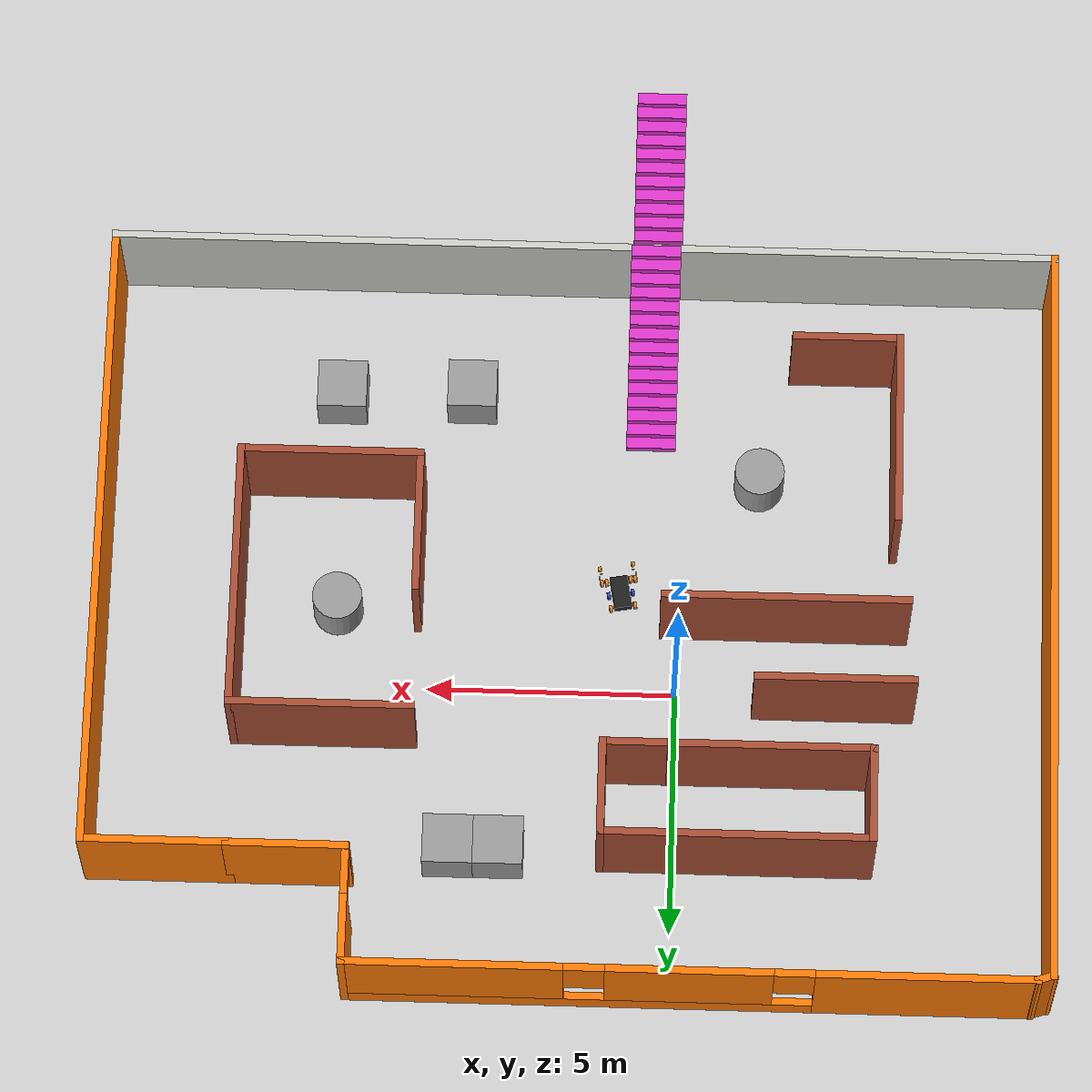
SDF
<sdf version="1.7">
 <world name="default">
  <light name="sun" type="directional">
   <pose>0 0 10 0 -0 0</pose>
   <diffuse>0.8 0.8 0.8 1</diffuse>
   <specular>0.2 0.2 0.2 1</specular>
   <attenuation>
    <range>1000</range>
    <constant>0.9</constant>
    <linear>0.01</linear>
    <quadratic>0.001</quadratic>
   </attenuation>
   <direction>-0.5 0.1 -0.9</direction>
   <spot><inner_angle>0</inner_angle><outer_angle>0</outer_angle><falloff>0</falloff></spot>
  </light>
  <model name="ground_plane">
   <static>1</static>
   <link name="link">
    <collision name="collision">
     <geometry><plane><normal>0 0 1</normal><size>100 100</size></plane></geometry>
     <surface><friction><ode><mu>100</mu><mu2>50</mu2></ode></friction></surface>
    </collision>
    <visual name="visual">
     <cast_shadows>0</cast_shadows>
     <geometry><plane><normal>0 0 1</normal><size>100 100</size></plane></geometry>
     <material>
      <script><uri>file://media/materials/scripts/gazebo.material</uri><name>Gazebo/Grey</name></script>
     </material>
    </visual>
   </link>
  </model>
  <gravity>0 0 -9.8</gravity>
  <magnetic_field>6e-06 2.3e-05 -4.2e-05</magnetic_field>
  <atmosphere type="adiabatic"/>
  <physics type="ode">
   <max_step_size>0.001</max_step_size>
   <real_time_factor>1</real_time_factor>
   <real_time_update_rate>1000</real_time_update_rate>
  </physics>
  <scene><ambient>0.4 0.4 0.4 1</ambient><background>0.7 0.7 0.7 1</background><shadows>1</shadows></scene>
  <spherical_coordinates>
   <surface_model>EARTH_WGS84</surface_model>
   <latitude_deg>0</latitude_deg>
   <longitude_deg>0</longitude_deg>
   <elevation>0</elevation>
   <heading_deg>0</heading_deg>
  </spherical_coordinates>
  <model name="hendbot">
   <link name="base_link">
    <inertial>
     <pose>-0.002987 -0 0.082641 0 -0 0</pose>
     <mass>54.8089</mass>
     <inertia>
      <ixx>1.31145</ixx>
      <ixy>-1.29347e-07</ixy>
      <ixz>-0.0106587</ixz>
      <iyy>2.666</iyy>
      <iyz>1.97052e-07</iyz>
      <izz>3.62598</izz>
     </inertia>
    </inertial>
    <collision name="base_link_fixed_joint_lump__hend_link_collision">
     <pose>-0.33246 0 0 0 -0 0</pose>
     <geometry><mesh><scale>1 1 1</scale><uri>model://hendbot/meshes/base_link.STL</uri></mesh></geometry>
    </collision>
    <collision name="base_link_fixed_joint_lump__LBW_Link_collision_1">
     <pose>-0.28246 0.215 0.035 1.5708 -1.1717 -3.14159</pose>
     <geometry><mesh><scale>1 1 1</scale><uri>model://hendbot/meshes/LBW_Link.STL</uri></mesh></geometry>
     <surface><friction><ode><mu>0.1</mu><mu2>0.1</mu2></ode></friction></surface>
    </collision>
    <collision name="base_link_fixed_joint_lump__LFW_Link_collision_2">
     <pose>0.28245 0.215 0.035103 1.5708 0.76776 3.14159</pose>
     <geometry><mesh><scale>1 1 1</scale><uri>model://hendbot/meshes/LFW_Link.STL</uri></mesh></geometry>
     <surface><friction><ode><mu>0.1</mu><mu2>0.1</mu2></ode></friction></surface>
    </collision>
    <collision name="base_link_fixed_joint_lump__RBW_Link_collision_3">
     <pose>-0.28246 -0.215 0.035 -1.5708 0.11175 -0</pose>
     <geometry><mesh><scale>1 1 1</scale><uri>model://hendbot/meshes/RBW_Link.STL</uri></mesh></geometry>
     <surface><friction><ode><mu>0.1</mu><mu2>0.1</mu2></ode></friction></surface>
    </collision>
    <collision name="base_link_fixed_joint_lump__RFW_Link_collision_4">
     <pose>0.28245 -0.215 0.035103 1.5708 0.34292 3.14159</pose>
     <geometry><mesh><scale>1 1 1</scale><uri>model://hendbot/meshes/RFW_Link.STL</uri></mesh></geometry>
     <surface><friction><ode><mu>0.1</mu><mu2>0.1</mu2></ode></friction></surface>
    </collision>
    <visual name="base_link_fixed_joint_lump__hend_link_visual">
     <pose>-0.33246 0 0 0 -0 0</pose>
     <geometry><mesh><scale>1 1 1</scale><uri>model://hendbot/meshes/base_link.STL</uri></mesh></geometry>
     <material>
      <script><name>Gazebo/Black</name><uri>file://media/materials/scripts/gazebo.material</uri></script>
     </material>
    </visual>
    <visual name="base_link_fixed_joint_lump__LBW_Link_visual_1">
     <pose>-0.28246 0.215 0.035 1.5708 -1.1717 -3.14159</pose>
     <geometry><mesh><scale>1 1 1</scale><uri>model://hendbot/meshes/LBW_Link.STL</uri></mesh></geometry>
     <material>
      <script><name>Gazebo/Orange</name><uri>file://media/materials/scripts/gazebo.material</uri></script>
     </material>
    </visual>
    <visual name="base_link_fixed_joint_lump__LFW_Link_visual_2">
     <pose>0.28245 0.215 0.035103 1.5708 0.76776 3.14159</pose>
     <geometry><mesh><scale>1 1 1</scale><uri>model://hendbot/meshes/LFW_Link.STL</uri></mesh></geometry>
     <material>
      <script><name>Gazebo/Orange</name><uri>file://media/materials/scripts/gazebo.material</uri></script>
     </material>
    </visual>
    <visual name="base_link_fixed_joint_lump__RBW_Link_visual_3">
     <pose>-0.28246 -0.215 0.035 -1.5708 0.11175 -0</pose>
     <geometry><mesh><scale>1 1 1</scale><uri>model://hendbot/meshes/RBW_Link.STL</uri></mesh></geometry>
     <material>
      <script><name>Gazebo/Orange</name><uri>file://media/materials/scripts/gazebo.material</uri></script>
     </material>
    </visual>
    <visual name="base_link_fixed_joint_lump__RFW_Link_visual_4">
     <pose>0.28245 -0.215 0.035103 1.5708 0.34292 3.14159</pose>
     <geometry><mesh><scale>1 1 1</scale><uri>model://hendbot/meshes/RFW_Link.STL</uri></mesh></geometry>
     <material>
      <script><name>Gazebo/Orange</name><uri>file://media/materials/scripts/gazebo.material</uri></script>
     </material>
    </visual>
   </link>
   <joint name="WLBelt_Joint" type="revolute">
    <pose relative_to="base_link">4e-05 0.215 0.035052 1.5708 0.35384 3.14159</pose>
    <parent>base_link</parent>
    <child>WLBelt_Link</child>
    <axis>
     <xyz>0 0 1</xyz>
     <limit><effort>100</effort><velocity>100</velocity><lower>-1e+16</lower><upper>1e+16</upper></limit>
     <dynamics>
      <damping>0.1</damping>
      <friction>0.1</friction>
      <spring_reference>0</spring_reference>
      <spring_stiffness>0</spring_stiffness>
     </dynamics>
    </axis>
   </joint>
   <link name="WLBelt_Link">
    <pose relative_to="WLBelt_Joint">0 0 0 0 -0 0</pose>
    <inertial>
     <pose>6e-06 2e-06 0.03 0 -0 0</pose>
     <mass>2.8302</mass>
     <inertia>
      <ixx>0.00487432</ixx>
      <ixy>1.0842e-19</ixy>
      <ixz>-5.95761e-21</ixz>
      <iyy>0.00487432</iyy>
      <iyz>-3.72125e-22</iyz>
      <izz>0.00805052</izz>
     </inertia>
    </inertial>
    <collision name="WLBelt_Link_collision">
     <geometry><mesh><scale>1 1 1</scale><uri>model://hendbot/meshes/WLBelt_Link.STL</uri></mesh></geometry>
    </collision>
    <visual name="WLBelt_Link_visual">
     <geometry><mesh><scale>1 1 1</scale><uri>model://hendbot/meshes/WLBelt_Link.STL</uri></mesh></geometry>
     <material>
      <script><name>Gazebo/Blue</name><uri>file://media/materials/scripts/gazebo.material</uri></script>
     </material>
    </visual>
   </link>
   <joint name="WRBelt_Joint" type="revolute">
    <pose relative_to="base_link">4e-05 -0.215 0.035052 -1.5708 0.65732 0</pose>
    <parent>base_link</parent>
    <child>WRBelt_Link</child>
    <axis>
     <xyz>0 0 1</xyz>
     <limit><effort>100</effort><velocity>100</velocity><lower>-1e+16</lower><upper>1e+16</upper></limit>
     <dynamics>
      <damping>0.1</damping>
      <friction>0.1</friction>
      <spring_reference>0</spring_reference>
      <spring_stiffness>0</spring_stiffness>
     </dynamics>
    </axis>
   </joint>
   <link name="WRBelt_Link">
    <pose relative_to="WRBelt_Joint">0 0 0 0 -0 0</pose>
    <inertial>
     <pose>-5e-06 4e-06 -0.03 0 -0 0</pose>
     <mass>2.8302</mass>
     <inertia>
      <ixx>0.00487432</ixx>
      <ixy>2.1684e-19</ixy>
      <ixz>9.79617e-36</ixz>
      <iyy>0.00487432</iyy>
      <iyz>7.94184e-36</iyz>
      <izz>0.00805052</izz>
     </inertia>
    </inertial>
    <collision name="WRBelt_Link_collision">
     <geometry><mesh><scale>1 1 1</scale><uri>model://hendbot/meshes/WRBelt_Link.STL</uri></mesh></geometry>
    </collision>
    <visual name="WRBelt_Link_visual">
     <geometry><mesh><scale>1 1 1</scale><uri>model://hendbot/meshes/WRBelt_Link.STL</uri></mesh></geometry>
     <material>
      <script><name>Gazebo/Blue</name><uri>file://media/materials/scripts/gazebo.material</uri></script>
     </material>
    </visual>
   </link>
   <joint name="LFFW_Joint" type="revolute">
    <pose relative_to="base_link">0.28245 0.30998 0.035103 1.5708 -1.005 -3.14159</pose>
    <parent>base_link</parent>
    <child>LFFW_Link</child>
    <axis>
     <xyz>0 0 1</xyz>
     <limit><effort>100</effort><velocity>100</velocity><lower>-1e+16</lower><upper>1e+16</upper></limit>
     <dynamics>
      <damping>0.1</damping>
      <friction>0.1</friction>
      <spring_reference>0</spring_reference>
      <spring_stiffness>0</spring_stiffness>
     </dynamics>
    </axis>
   </joint>
   <link name="LFFW_Link">
    <pose relative_to="LFFW_Joint">0 0 0 0 -0 0</pose>
    <inertial>
     <pose>-0.016199 0.044173 0.030887 0 -0 0</pose>
     <mass>3.50118</mass>
     <inertia>
      <ixx>0.0402368</ixx>
      <ixy>0.0126939</ixy>
      <ixz>-6.84372e-05</ixz>
      <iyy>0.0103212</iyy>
      <iyz>0.00018326</iyz>
      <izz>0.0481955</izz>
     </inertia>
    </inertial>
    <collision name="LFFW_Link_collision">
     <geometry><mesh><scale>1 1 1</scale><uri>model://hendbot/meshes/LFFW_Link.STL</uri></mesh></geometry>
     <surface><friction><ode><mu>0.1</mu><mu2>0.1</mu2></ode></friction></surface>
    </collision>
    <collision name="LFFW_Link_fixed_joint_lump__LF_Link_collision_1">
     <pose>0 0 0 0 -0 1.91705</pose>
     <geometry><mesh><scale>1 1 1</scale><uri>model://hendbot/meshes/LF_Link.STL</uri></mesh></geometry>
    </collision>
    <collision name="LFFW_Link_fixed_joint_lump__LW_Link_collision_2">
     <pose>-0.103425 0.281385 0 0 0 -2.57584</pose>
     <geometry><mesh><scale>1 1 1</scale><uri>model://hendbot/meshes/LW_Link.STL</uri></mesh></geometry>
     <surface><friction><ode><mu>0.1</mu><mu2>0.1</mu2></ode></friction></surface>
    </collision>
    <visual name="LFFW_Link_visual">
     <geometry><mesh><scale>1 1 1</scale><uri>model://hendbot/meshes/LFFW_Link.STL</uri></mesh></geometry>
     <material>
      <script><name>Gazebo/Orange</name><uri>file://media/materials/scripts/gazebo.material</uri></script>
     </material>
    </visual>
    <visual name="LFFW_Link_fixed_joint_lump__LF_Link_visual_1">
     <pose>0 0 0 0 -0 1.91705</pose>
     <geometry><mesh><scale>1 1 1</scale><uri>model://hendbot/meshes/LF_Link.STL</uri></mesh></geometry>
    </visual>
    <visual name="LFFW_Link_fixed_joint_lump__LW_Link_visual_2">
     <pose>-0.103425 0.281385 0 0 0 -2.57584</pose>
     <geometry><mesh><scale>1 1 1</scale><uri>model://hendbot/meshes/LW_Link.STL</uri></mesh></geometry>
     <material>
      <script><name>Gazebo/Orange</name><uri>file://media/materials/scripts/gazebo.material</uri></script>
     </material>
    </visual>
   </link>
   <joint name="RFFW_Joint" type="revolute">
    <pose relative_to="base_link">0.28245 -0.31 0.035103 -1.5708 -0.76747 0</pose>
    <parent>base_link</parent>
    <child>RFFW_Link</child>
    <axis>
     <xyz>0 0 1</xyz>
     <limit><effort>100</effort><velocity>100</velocity><lower>-1e+16</lower><upper>1e+16</upper></limit>
     <dynamics>
      <damping>0.1</damping>
      <friction>0.1</friction>
      <spring_reference>0</spring_reference>
      <spring_stiffness>0</spring_stiffness>
     </dynamics>
    </axis>
   </joint>
   <link name="RFFW_Link">
    <pose relative_to="RFFW_Joint">0 0 0 0 -0 0</pose>
    <inertial>
     <pose>0.041307 0.022524 -0.030886 0 -0 0</pose>
     <mass>3.50118</mass>
     <inertia>
      <ixx>0.0146412</ixx>
      <ixy>-0.0164836</ixy>
      <ixz>-0.000172565</ixz>
      <iyy>0.0359161</iyy>
      <iyz>-9.27813e-05</iyz>
      <izz>0.0481951</izz>
     </inertia>
    </inertial>
    <collision name="RFFW_Link_collision">
     <geometry><mesh><scale>1 1 1</scale><uri>model://hendbot/meshes/RFFW_Link.STL</uri></mesh></geometry>
     <surface><friction><ode><mu>0.1</mu><mu2>0.1</mu2></ode></friction></surface>
    </collision>
    <collision name="RFFW_Link_fixed_joint_lump__RF_Link_collision_1">
     <pose>0 0.01 0 0 -0 0.504452</pose>
     <geometry><mesh><scale>1 1 1</scale><uri>model://hendbot/meshes/RF_Link.STL</uri></mesh></geometry>
    </collision>
    <collision name="RFFW_Link_fixed_joint_lump__RW_Link_collision_2">
     <pose>0.263308 0.143325 0 0 0 -0.803348</pose>
     <geometry><mesh><scale>1 1 1</scale><uri>model://hendbot/meshes/RW_Link.STL</uri></mesh></geometry>
     <surface><friction><ode><mu>0.1</mu><mu2>0.1</mu2></ode></friction></surface>
    </collision>
    <visual name="RFFW_Link_visual">
     <geometry><mesh><scale>1 1 1</scale><uri>model://hendbot/meshes/RFFW_Link.STL</uri></mesh></geometry>
     <material>
      <script><name>Gazebo/Orange</name><uri>file://media/materials/scripts/gazebo.material</uri></script>
     </material>
    </visual>
    <visual name="RFFW_Link_fixed_joint_lump__RF_Link_visual_1">
     <pose>0 0.01 0 0 -0 0.504452</pose>
     <geometry><mesh><scale>1 1 1</scale><uri>model://hendbot/meshes/RF_Link.STL</uri></mesh></geometry>
    </visual>
    <visual name="RFFW_Link_fixed_joint_lump__RW_Link_visual_2">
     <pose>0.263308 0.143325 0 0 0 -0.803348</pose>
     <geometry><mesh><scale>1 1 1</scale><uri>model://hendbot/meshes/RW_Link.STL</uri></mesh></geometry>
     <material>
      <script><name>Gazebo/Orange</name><uri>file://media/materials/scripts/gazebo.material</uri></script>
     </material>
    </visual>
   </link>
   <static>0</static>
   <plugin name="diff_drive" filename="libgazebo_ros_diff_drive.so">
    <left_joint>WLBelt_Joint</left_joint>
    <right_joint>WRBelt_Joint</right_joint>
    <wheel_separation>0.43</wheel_separation>
    <wheel_diameter>0.17</wheel_diameter>
    <max_wheel_torque>200</max_wheel_torque>
    <max_wheel_acceleration>10.0</max_wheel_acceleration>
    <odometry_frame>odom</odometry_frame>
    <robot_base_frame>base_link</robot_base_frame>
    <publish_odom>1</publish_odom>
    <publish_odom_tf>1</publish_odom_tf>
    <publish_wheel_tf>1</publish_wheel_tf>
   </plugin>
   <pose>1.14303 -2.13211 0.039866 -0.000218 6.6e-05 -1.38716</pose>
  </model>
  <model name="home">
   <pose>2.04571 -2.81006 0 0 -0 0</pose>
   <link name="Stairs_1">
    <visual name="Stairs_1_Visual_0">
     <pose>-1.43345 -2.59805 0.083333 0 -0 0</pose>
     <geometry><box><size>1 0.233333 0.166667</size></box></geometry>
     <material>
      <script><uri>file://media/materials/scripts/gazebo.material</uri><name>Gazebo/Grey</name></script>
      <ambient>0.870588 0.207843 0.792157 1</ambient>
     </material>
     <meta><layer>0</layer></meta>
    </visual>
    <collision name="Stairs_1_Collision_0">
     <geometry><box><size>1 0.233333 0.166667</size></box></geometry>
     <pose>-1.43345 -2.59805 0.083333 0 -0 0</pose>
    </collision>
    <visual name="Stairs_1_Visual_1">
     <pose>-1.43345 -2.83138 0.25 0 -0 0</pose>
     <geometry><box><size>1 0.233333 0.166667</size></box></geometry>
     <material>
      <script><uri>file://media/materials/scripts/gazebo.material</uri><name>Gazebo/Grey</name></script>
      <ambient>0.870588 0.207843 0.792157 1</ambient>
     </material>
     <meta><layer>0</layer></meta>
    </visual>
    <collision name="Stairs_1_Collision_1">
     <geometry><box><size>1 0.233333 0.166667</size></box></geometry>
     <pose>-1.43345 -2.83138 0.25 0 -0 0</pose>
    </collision>
    <visual name="Stairs_1_Visual_2">
     <pose>-1.43345 -3.06471 0.416667 0 -0 0</pose>
     <geometry><box><size>1 0.233333 0.166667</size></box></geometry>
     <material>
      <script><uri>file://media/materials/scripts/gazebo.material</uri><name>Gazebo/Grey</name></script>
      <ambient>0.870588 0.207843 0.792157 1</ambient>
     </material>
     <meta><layer>0</layer></meta>
    </visual>
    <collision name="Stairs_1_Collision_2">
     <geometry><box><size>1 0.233333 0.166667</size></box></geometry>
     <pose>-1.43345 -3.06471 0.416667 0 -0 0</pose>
    </collision>
    <visual name="Stairs_1_Visual_3">
     <pose>-1.43345 -3.29805 0.583333 0 -0 0</pose>
     <geometry><box><size>1 0.233333 0.166667</size></box></geometry>
     <material>
      <script><uri>file://media/materials/scripts/gazebo.material</uri><name>Gazebo/Grey</name></script>
      <ambient>0.870588 0.207843 0.792157 1</ambient>
     </material>
     <meta><layer>0</layer></meta>
    </visual>
    <collision name="Stairs_1_Collision_3">
     <geometry><box><size>1 0.233333 0.166667</size></box></geometry>
     <pose>-1.43345 -3.29805 0.583333 0 -0 0</pose>
    </collision>
    <visual name="Stairs_1_Visual_4">
     <pose>-1.43345 -3.53138 0.75 0 -0 0</pose>
     <geometry><box><size>1 0.233333 0.166667</size></box></geometry>
     <material>
      <script><uri>file://media/materials/scripts/gazebo.material</uri><name>Gazebo/Grey</name></script>
      <ambient>0.870588 0.207843 0.792157 1</ambient>
     </material>
     <meta><layer>0</layer></meta>
    </visual>
    <collision name="Stairs_1_Collision_4">
     <geometry><box><size>1 0.233333 0.166667</size></box></geometry>
     <pose>-1.43345 -3.53138 0.75 0 -0 0</pose>
    </collision>
    <visual name="Stairs_1_Visual_5">
     <pose>-1.43345 -3.76471 0.916667 0 -0 0</pose>
     <geometry><box><size>1 0.233333 0.166667</size></box></geometry>
     <material>
      <script><uri>file://media/materials/scripts/gazebo.material</uri><name>Gazebo/Grey</name></script>
      <ambient>0.870588 0.207843 0.792157 1</ambient>
     </material>
     <meta><layer>0</layer></meta>
    </visual>
    <collision name="Stairs_1_Collision_5">
     <geometry><box><size>1 0.233333 0.166667</size></box></geometry>
     <pose>-1.43345 -3.76471 0.916667 0 -0 0</pose>
    </collision>
    <visual name="Stairs_1_Visual_6">
     <pose>-1.43345 -3.99805 1.08333 0 -0 0</pose>
     <geometry><box><size>1 0.233333 0.166667</size></box></geometry>
     <material>
      <script><uri>file://media/materials/scripts/gazebo.material</uri><name>Gazebo/Grey</name></script>
      <ambient>0.870588 0.207843 0.792157 1</ambient>
     </material>
     <meta><layer>0</layer></meta>
    </visual>
    <collision name="Stairs_1_Collision_6">
     <geometry><box><size>1 0.233333 0.166667</size></box></geometry>
     <pose>-1.43345 -3.99805 1.08333 0 -0 0</pose>
    </collision>
    <visual name="Stairs_1_Visual_7">
     <pose>-1.43345 -4.23138 1.25 0 -0 0</pose>
     <geometry><box><size>1 0.233333 0.166667</size></box></geometry>
     <material>
      <script><uri>file://media/materials/scripts/gazebo.material</uri><name>Gazebo/Grey</name></script>
      <ambient>0.870588 0.207843 0.792157 1</ambient>
     </material>
     <meta><layer>0</layer></meta>
    </visual>
    <collision name="Stairs_1_Collision_7">
     <geometry><box><size>1 0.233333 0.166667</size></box></geometry>
     <pose>-1.43345 -4.23138 1.25 0 -0 0</pose>
    </collision>
    <visual name="Stairs_1_Visual_8">
     <pose>-1.43345 -4.46471 1.41667 0 -0 0</pose>
     <geometry><box><size>1 0.233333 0.166667</size></box></geometry>
     <material>
      <script><uri>file://media/materials/scripts/gazebo.material</uri><name>Gazebo/Grey</name></script>
      <ambient>0.870588 0.207843 0.792157 1</ambient>
     </material>
     <meta><layer>0</layer></meta>
    </visual>
    <collision name="Stairs_1_Collision_8">
     <geometry><box><size>1 0.233333 0.166667</size></box></geometry>
     <pose>-1.43345 -4.46471 1.41667 0 -0 0</pose>
    </collision>
    <visual name="Stairs_1_Visual_9">
     <pose>-1.43345 -4.69805 1.58333 0 -0 0</pose>
     <geometry><box><size>1 0.233333 0.166667</size></box></geometry>
     <material>
      <script><uri>file://media/materials/scripts/gazebo.material</uri><name>Gazebo/Grey</name></script>
      <ambient>0.870588 0.207843 0.792157 1</ambient>
     </material>
     <meta><layer>0</layer></meta>
    </visual>
    <collision name="Stairs_1_Collision_9">
     <geometry><box><size>1 0.233333 0.166667</size></box></geometry>
     <pose>-1.43345 -4.69805 1.58333 0 -0 0</pose>
    </collision>
    <visual name="Stairs_1_Visual_10">
     <pose>-1.43345 -4.93138 1.75 0 -0 0</pose>
     <geometry><box><size>1 0.233333 0.166667</size></box></geometry>
     <material>
      <script><uri>file://media/materials/scripts/gazebo.material</uri><name>Gazebo/Grey</name></script>
      <ambient>0.870588 0.207843 0.792157 1</ambient>
     </material>
     <meta><layer>0</layer></meta>
    </visual>
    <collision name="Stairs_1_Collision_10">
     <geometry><box><size>1 0.233333 0.166667</size></box></geometry>
     <pose>-1.43345 -4.93138 1.75 0 -0 0</pose>
    </collision>
    <visual name="Stairs_1_Visual_11">
     <pose>-1.43345 -5.16471 1.91667 0 -0 0</pose>
     <geometry><box><size>1 0.233333 0.166667</size></box></geometry>
     <material>
      <script><uri>file://media/materials/scripts/gazebo.material</uri><name>Gazebo/Grey</name></script>
      <ambient>0.870588 0.207843 0.792157 1</ambient>
     </material>
     <meta><layer>0</layer></meta>
    </visual>
    <collision name="Stairs_1_Collision_11">
     <geometry><box><size>1 0.233333 0.166667</size></box></geometry>
     <pose>-1.43345 -5.16471 1.91667 0 -0 0</pose>
    </collision>
    <visual name="Stairs_1_Visual_12">
     <pose>-1.43345 -5.39805 2.08333 0 -0 0</pose>
     <geometry><box><size>1 0.233333 0.166667</size></box></geometry>
     <material>
      <script><uri>file://media/materials/scripts/gazebo.material</uri><name>Gazebo/Grey</name></script>
      <ambient>0.870588 0.207843 0.792157 1</ambient>
     </material>
     <meta><layer>0</layer></meta>
    </visual>
    <collision name="Stairs_1_Collision_12">
     <geometry><box><size>1 0.233333 0.166667</size></box></geometry>
     <pose>-1.43345 -5.39805 2.08333 0 -0 0</pose>
    </collision>
    <visual name="Stairs_1_Visual_13">
     <pose>-1.43345 -5.63138 2.25 0 -0 0</pose>
     <geometry><box><size>1 0.233333 0.166667</size></box></geometry>
     <material>
      <script><uri>file://media/materials/scripts/gazebo.material</uri><name>Gazebo/Grey</name></script>
      <ambient>0.870588 0.207843 0.792157 1</ambient>
     </material>
     <meta><layer>0</layer></meta>
    </visual>
    <collision name="Stairs_1_Collision_13">
     <geometry><box><size>1 0.233333 0.166667</size></box></geometry>
     <pose>-1.43345 -5.63138 2.25 0 -0 0</pose>
    </collision>
    <visual name="Stairs_1_Visual_14">
     <pose>-1.43345 -5.86471 2.41667 0 -0 0</pose>
     <geometry><box><size>1 0.233333 0.166667</size></box></geometry>
     <material>
      <script><uri>file://media/materials/scripts/gazebo.material</uri><name>Gazebo/Grey</name></script>
      <ambient>0.870588 0.207843 0.792157 1</ambient>
     </material>
     <meta><layer>0</layer></meta>
    </visual>
    <collision name="Stairs_1_Collision_14">
     <geometry><box><size>1 0.233333 0.166667</size></box></geometry>
     <pose>-1.43345 -5.86471 2.41667 0 -0 0</pose>
    </collision>
   </link>
   <link name="Stairs_2">
    <visual name="Stairs_2_Visual_0">
     <pose>-1.47391 -5.98017 0.083333 0 -0 0</pose>
     <geometry><box><size>1 0.233333 0.166667</size></box></geometry>
     <material>
      <script><uri>file://media/materials/scripts/gazebo.material</uri><name>Gazebo/Grey</name></script>
      <ambient>0.870588 0.207843 0.792157 1</ambient>
     </material>
     <meta><layer>0</layer></meta>
    </visual>
    <collision name="Stairs_2_Collision_0">
     <geometry><box><size>1 0.233333 0.166667</size></box></geometry>
     <pose>-1.47391 -5.98017 0.083333 0 -0 0</pose>
    </collision>
    <visual name="Stairs_2_Visual_1">
     <pose>-1.47391 -6.2135 0.25 0 -0 0</pose>
     <geometry><box><size>1 0.233333 0.166667</size></box></geometry>
     <material>
      <script><uri>file://media/materials/scripts/gazebo.material</uri><name>Gazebo/Grey</name></script>
      <ambient>0.870588 0.207843 0.792157 1</ambient>
     </material>
     <meta><layer>0</layer></meta>
    </visual>
    <collision name="Stairs_2_Collision_1">
     <geometry><box><size>1 0.233333 0.166667</size></box></geometry>
     <pose>-1.47391 -6.2135 0.25 0 -0 0</pose>
    </collision>
    <visual name="Stairs_2_Visual_2">
     <pose>-1.47391 -6.44684 0.416667 0 -0 0</pose>
     <geometry><box><size>1 0.233333 0.166667</size></box></geometry>
     <material>
      <script><uri>file://media/materials/scripts/gazebo.material</uri><name>Gazebo/Grey</name></script>
      <ambient>0.870588 0.207843 0.792157 1</ambient>
     </material>
     <meta><layer>0</layer></meta>
    </visual>
    <collision name="Stairs_2_Collision_2">
     <geometry><box><size>1 0.233333 0.166667</size></box></geometry>
     <pose>-1.47391 -6.44684 0.416667 0 -0 0</pose>
    </collision>
    <visual name="Stairs_2_Visual_3">
     <pose>-1.47391 -6.68017 0.583333 0 -0 0</pose>
     <geometry><box><size>1 0.233333 0.166667</size></box></geometry>
     <material>
      <script><uri>file://media/materials/scripts/gazebo.material</uri><name>Gazebo/Grey</name></script>
      <ambient>0.870588 0.207843 0.792157 1</ambient>
     </material>
     <meta><layer>0</layer></meta>
    </visual>
    <collision name="Stairs_2_Collision_3">
     <geometry><box><size>1 0.233333 0.166667</size></box></geometry>
     <pose>-1.47391 -6.68017 0.583333 0 -0 0</pose>
    </collision>
    <visual name="Stairs_2_Visual_4">
     <pose>-1.47391 -6.9135 0.75 0 -0 0</pose>
     <geometry><box><size>1 0.233333 0.166667</size></box></geometry>
     <material>
      <script><uri>file://media/materials/scripts/gazebo.material</uri><name>Gazebo/Grey</name></script>
      <ambient>0.870588 0.207843 0.792157 1</ambient>
     </material>
     <meta><layer>0</layer></meta>
    </visual>
    <collision name="Stairs_2_Collision_4">
     <geometry><box><size>1 0.233333 0.166667</size></box></geometry>
     <pose>-1.47391 -6.9135 0.75 0 -0 0</pose>
    </collision>
    <visual name="Stairs_2_Visual_5">
     <pose>-1.47391 -7.14684 0.916667 0 -0 0</pose>
     <geometry><box><size>1 0.233333 0.166667</size></box></geometry>
     <material>
      <script><uri>file://media/materials/scripts/gazebo.material</uri><name>Gazebo/Grey</name></script>
      <ambient>0.870588 0.207843 0.792157 1</ambient>
     </material>
     <meta><layer>0</layer></meta>
    </visual>
    <collision name="Stairs_2_Collision_5">
     <geometry><box><size>1 0.233333 0.166667</size></box></geometry>
     <pose>-1.47391 -7.14684 0.916667 0 -0 0</pose>
    </collision>
    <visual name="Stairs_2_Visual_6">
     <pose>-1.47391 -7.38017 1.08333 0 -0 0</pose>
     <geometry><box><size>1 0.233333 0.166667</size></box></geometry>
     <material>
      <script><uri>file://media/materials/scripts/gazebo.material</uri><name>Gazebo/Grey</name></script>
      <ambient>0.870588 0.207843 0.792157 1</ambient>
     </material>
     <meta><layer>0</layer></meta>
    </visual>
    <collision name="Stairs_2_Collision_6">
     <geometry><box><size>1 0.233333 0.166667</size></box></geometry>
     <pose>-1.47391 -7.38017 1.08333 0 -0 0</pose>
    </collision>
    <visual name="Stairs_2_Visual_7">
     <pose>-1.47391 -7.6135 1.25 0 -0 0</pose>
     <geometry><box><size>1 0.233333 0.166667</size></box></geometry>
     <material>
      <script><uri>file://media/materials/scripts/gazebo.material</uri><name>Gazebo/Grey</name></script>
      <ambient>0.870588 0.207843 0.792157 1</ambient>
     </material>
     <meta><layer>0</layer></meta>
    </visual>
    <collision name="Stairs_2_Collision_7">
     <geometry><box><size>1 0.233333 0.166667</size></box></geometry>
     <pose>-1.47391 -7.6135 1.25 0 -0 0</pose>
    </collision>
    <visual name="Stairs_2_Visual_8">
     <pose>-1.47391 -7.84684 1.41667 0 -0 0</pose>
     <geometry><box><size>1 0.233333 0.166667</size></box></geometry>
     <material>
      <script><uri>file://media/materials/scripts/gazebo.material</uri><name>Gazebo/Grey</name></script>
      <ambient>0.870588 0.207843 0.792157 1</ambient>
     </material>
     <meta><layer>0</layer></meta>
    </visual>
    <collision name="Stairs_2_Collision_8">
     <geometry><box><size>1 0.233333 0.166667</size></box></geometry>
     <pose>-1.47391 -7.84684 1.41667 0 -0 0</pose>
    </collision>
    <visual name="Stairs_2_Visual_9">
     <pose>-1.47391 -8.08017 1.58333 0 -0 0</pose>
     <geometry><box><size>1 0.233333 0.166667</size></box></geometry>
     <material>
      <script><uri>file://media/materials/scripts/gazebo.material</uri><name>Gazebo/Grey</name></script>
      <ambient>0.870588 0.207843 0.792157 1</ambient>
     </material>
     <meta><layer>0</layer></meta>
    </visual>
    <collision name="Stairs_2_Collision_9">
     <geometry><box><size>1 0.233333 0.166667</size></box></geometry>
     <pose>-1.47391 -8.08017 1.58333 0 -0 0</pose>
    </collision>
    <visual name="Stairs_2_Visual_10">
     <pose>-1.47391 -8.3135 1.75 0 -0 0</pose>
     <geometry><box><size>1 0.233333 0.166667</size></box></geometry>
     <material>
      <script><uri>file://media/materials/scripts/gazebo.material</uri><name>Gazebo/Grey</name></script>
      <ambient>0.870588 0.207843 0.792157 1</ambient>
     </material>
     <meta><layer>0</layer></meta>
    </visual>
    <collision name="Stairs_2_Collision_10">
     <geometry><box><size>1 0.233333 0.166667</size></box></geometry>
     <pose>-1.47391 -8.3135 1.75 0 -0 0</pose>
    </collision>
    <visual name="Stairs_2_Visual_11">
     <pose>-1.47391 -8.54684 1.91667 0 -0 0</pose>
     <geometry><box><size>1 0.233333 0.166667</size></box></geometry>
     <material>
      <script><uri>file://media/materials/scripts/gazebo.material</uri><name>Gazebo/Grey</name></script>
      <ambient>0.870588 0.207843 0.792157 1</ambient>
     </material>
     <meta><layer>0</layer></meta>
    </visual>
    <collision name="Stairs_2_Collision_11">
     <geometry><box><size>1 0.233333 0.166667</size></box></geometry>
     <pose>-1.47391 -8.54684 1.91667 0 -0 0</pose>
    </collision>
    <visual name="Stairs_2_Visual_12">
     <pose>-1.47391 -8.78017 2.08333 0 -0 0</pose>
     <geometry><box><size>1 0.233333 0.166667</size></box></geometry>
     <material>
      <script><uri>file://media/materials/scripts/gazebo.material</uri><name>Gazebo/Grey</name></script>
      <ambient>0.870588 0.207843 0.792157 1</ambient>
     </material>
     <meta><layer>0</layer></meta>
    </visual>
    <collision name="Stairs_2_Collision_12">
     <geometry><box><size>1 0.233333 0.166667</size></box></geometry>
     <pose>-1.47391 -8.78017 2.08333 0 -0 0</pose>
    </collision>
    <visual name="Stairs_2_Visual_13">
     <pose>-1.47391 -9.0135 2.25 0 -0 0</pose>
     <geometry><box><size>1 0.233333 0.166667</size></box></geometry>
     <material>
      <script><uri>file://media/materials/scripts/gazebo.material</uri><name>Gazebo/Grey</name></script>
      <ambient>0.870588 0.207843 0.792157 1</ambient>
     </material>
     <meta><layer>0</layer></meta>
    </visual>
    <collision name="Stairs_2_Collision_13">
     <geometry><box><size>1 0.233333 0.166667</size></box></geometry>
     <pose>-1.47391 -9.0135 2.25 0 -0 0</pose>
    </collision>
    <visual name="Stairs_2_Visual_14">
     <pose>-1.47391 -9.24684 2.41667 0 -0 0</pose>
     <geometry><box><size>1 0.233333 0.166667</size></box></geometry>
     <material>
      <script><uri>file://media/materials/scripts/gazebo.material</uri><name>Gazebo/Grey</name></script>
      <ambient>0.870588 0.207843 0.792157 1</ambient>
     </material>
     <meta><layer>0</layer></meta>
    </visual>
    <collision name="Stairs_2_Collision_14">
     <geometry><box><size>1 0.233333 0.166667</size></box></geometry>
     <pose>-1.47391 -9.24684 2.41667 0 -0 0</pose>
    </collision>
   </link>
   <link name="Wall_13">
    <collision name="Wall_13_Collision">
     <geometry><box><size>15.25 0.15 2.5</size></box></geometry>
     <pose>0 0 1.25 0 -0 0</pose>
    </collision>
    <visual name="Wall_13_Visual">
     <pose>0 0 1.25 0 -0 0</pose>
     <geometry><box><size>15.25 0.15 2.5</size></box></geometry>
     <material>
      <script><uri>file://media/materials/scripts/gazebo.material</uri><name>Gazebo/Grey</name></script>
      <ambient>0.996078 0.47451 0.0196078 1</ambient>
     </material>
     <meta><layer>0</layer></meta>
    </visual>
    <pose>-9.51699 1.61864 0 0 -0 1.5708</pose>
   </link>
   <link name="Wall_14">
    <collision name="Wall_14_Collision">
     <geometry><box><size>0.466228 0.15 2.5</size></box></geometry>
     <pose>0 0 1.25 0 -0 0</pose>
    </collision>
    <visual name="Wall_14_Visual">
     <pose>0 0 1.25 0 -0 0</pose>
     <geometry><box><size>0.466228 0.15 2.5</size></box></geometry>
     <material>
      <script><uri>file://media/materials/scripts/gazebo.material</uri><name>Gazebo/Grey</name></script>
      <ambient>0.996078 0.47451 0.0196078 1</ambient>
     </material>
     <meta><layer>0</layer></meta>
    </visual>
    <pose>-9.36699 9.21864 0 0 -0 0.321751</pose>
   </link>
   <link name="Wall_18">
    <collision name="Wall_18_Collision">
     <geometry><box><size>3 0.15 2.5</size></box></geometry>
     <pose>0 0 1.25 0 -0 0</pose>
    </collision>
    <visual name="Wall_18_Visual">
     <pose>0 0 1.25 0 -0 0</pose>
     <geometry><box><size>3 0.15 2.5</size></box></geometry>
     <material>
      <script><uri>file://media/materials/scripts/gazebo.material</uri><name>Gazebo/Bricks</name></script>
      <ambient>1 1 1 1</ambient>
     </material>
     <meta><layer>0</layer></meta>
    </visual>
    <pose>3.17512 0.070333 0 0 -0 -1.5708</pose>
   </link>
   <link name="Wall_19">
    <collision name="Wall_19_Collision">
     <geometry><box><size>3.75 0.15 2.5</size></box></geometry>
     <pose>0 0 1.25 0 -0 0</pose>
    </collision>
    <visual name="Wall_19_Visual">
     <pose>0 0 1.25 0 -0 0</pose>
     <geometry><box><size>3.75 0.15 2.5</size></box></geometry>
     <material>
      <script><uri>file://media/materials/scripts/gazebo.material</uri><name>Gazebo/Bricks</name></script>
      <ambient>1 1 1 1</ambient>
     </material>
     <meta><layer>0</layer></meta>
    </visual>
    <pose>4.97512 -1.35467 0 0 -0 0</pose>
   </link>
   <link name="Wall_2">
    <pose>-2.44012 9.26863 0 0 -0 0</pose>
    <visual name="Wall_2_Visual_0">
     <pose>-4.65263 0 1.25 0 -0 0</pose>
     <geometry><box><size>4.3988 0.15 2.5</size></box></geometry>
     <material>
      <script><uri>file://media/materials/scripts/gazebo.material</uri><name>Gazebo/Grey</name></script>
      <ambient>0.996078 0.47451 0.0196078 1</ambient>
     </material>
     <meta><layer>0</layer></meta>
    </visual>
    <collision name="Wall_2_Collision_0">
     <geometry><box><size>4.3988 0.15 2.5</size></box></geometry>
     <pose>-4.65263 0 1.25 0 -0 0</pose>
    </collision>
    <visual name="Wall_2_Visual_1">
     <pose>2.1994 0 0.25 0 -0 0</pose>
     <geometry><box><size>9.30525 0.15 0.5</size></box></geometry>
     <material>
      <script><uri>file://media/materials/scripts/gazebo.material</uri><name>Gazebo/Grey</name></script>
      <ambient>0.996078 0.47451 0.0196078 1</ambient>
     </material>
     <meta><layer>0</layer></meta>
    </visual>
    <collision name="Wall_2_Collision_1">
     <geometry><box><size>9.30525 0.15 0.5</size></box></geometry>
     <pose>2.1994 0 0.25 0 -0 0</pose>
    </collision>
    <visual name="Wall_2_Visual_2">
     <pose>-0.003309 0 1.5 0 -0 0</pose>
     <geometry><box><size>3.29983 0.15 2</size></box></geometry>
     <material>
      <script><uri>file://media/materials/scripts/gazebo.material</uri><name>Gazebo/Grey</name></script>
      <ambient>0.996078 0.47451 0.0196078 1</ambient>
     </material>
     <meta><layer>0</layer></meta>
    </visual>
    <collision name="Wall_2_Collision_2">
     <geometry><box><size>3.29983 0.15 2</size></box></geometry>
     <pose>-0.003309 0 1.5 0 -0 0</pose>
    </collision>
    <visual name="Wall_2_Visual_3">
     <pose>4.64932 0 1.5 0 -0 0</pose>
     <geometry><box><size>4.40542 0.15 2</size></box></geometry>
     <material>
      <script><uri>file://media/materials/scripts/gazebo.material</uri><name>Gazebo/Grey</name></script>
      <ambient>0.996078 0.47451 0.0196078 1</ambient>
     </material>
     <meta><layer>0</layer></meta>
    </visual>
    <collision name="Wall_2_Collision_3">
     <geometry><box><size>4.40542 0.15 2</size></box></geometry>
     <pose>4.64932 0 1.5 0 -0 0</pose>
    </collision>
    <visual name="Wall_2_Visual_4">
     <pose>-2.05322 0 1.9 0 -0 0</pose>
     <geometry><box><size>0.8 0.15 1.2</size></box></geometry>
     <material>
      <script><uri>file://media/materials/scripts/gazebo.material</uri><name>Gazebo/Grey</name></script>
      <ambient>0.996078 0.47451 0.0196078 1</ambient>
     </material>
     <meta><layer>0</layer></meta>
    </visual>
    <collision name="Wall_2_Collision_4">
     <geometry><box><size>0.8 0.15 1.2</size></box></geometry>
     <pose>-2.05322 0 1.9 0 -0 0</pose>
    </collision>
    <visual name="Wall_2_Visual_5">
     <pose>2.04661 0 1.9 0 -0 0</pose>
     <geometry><box><size>0.8 0.15 1.2</size></box></geometry>
     <material>
      <script><uri>file://media/materials/scripts/gazebo.material</uri><name>Gazebo/Grey</name></script>
      <ambient>0.996078 0.47451 0.0196078 1</ambient>
     </material>
     <meta><layer>0</layer></meta>
    </visual>
    <collision name="Wall_2_Collision_5">
     <geometry><box><size>0.8 0.15 1.2</size></box></geometry>
     <pose>2.04661 0 1.9 0 -0 0</pose>
    </collision>
   </link>
   <link name="Wall_20">
    <collision name="Wall_20_Collision">
     <geometry><box><size>5.5 0.15 2.5</size></box></geometry>
     <pose>0 0 1.25 0 -0 0</pose>
    </collision>
    <visual name="Wall_20_Visual">
     <pose>0 0 1.25 0 -0 0</pose>
     <geometry><box><size>5.5 0.15 2.5</size></box></geometry>
     <material>
      <script><uri>file://media/materials/scripts/gazebo.material</uri><name>Gazebo/Bricks</name></script>
      <ambient>1 1 1 1</ambient>
     </material>
     <meta><layer>0</layer></meta>
    </visual>
    <pose>6.77512 1.32033 0 0 -0 1.5708</pose>
   </link>
   <link name="Wall_21">
    <collision name="Wall_21_Collision">
     <geometry><box><size>3.75 0.15 2.5</size></box></geometry>
     <pose>0 0 1.25 0 -0 0</pose>
    </collision>
    <visual name="Wall_21_Visual">
     <pose>0 0 1.25 0 -0 0</pose>
     <geometry><box><size>3.75 0.15 2.5</size></box></geometry>
     <material>
      <script><uri>file://media/materials/scripts/gazebo.material</uri><name>Gazebo/Bricks</name></script>
      <ambient>1 1 1 1</ambient>
     </material>
     <meta><layer>0</layer></meta>
    </visual>
    <pose>4.97512 3.99533 0 0 -0 3.14159</pose>
   </link>
   <link name="Wall_23">
    <collision name="Wall_23_Collision">
     <geometry><box><size>1.5 0.15 2.5</size></box></geometry>
     <pose>0 0 1.25 0 -0 0</pose>
    </collision>
    <visual name="Wall_23_Visual">
     <pose>0 0 1.25 0 -0 0</pose>
     <geometry><box><size>1.5 0.15 2.5</size></box></geometry>
     <material>
      <script><uri>file://media/materials/scripts/gazebo.material</uri><name>Gazebo/Bricks</name></script>
      <ambient>0.996078 0.47451 0.0196078 1</ambient>
     </material>
     <meta><layer>0</layer></meta>
    </visual>
    <pose>-1.30665 4.62098 0 0 -0 0</pose>
   </link>
   <link name="Wall_24">
    <collision name="Wall_24_Collision">
     <geometry><box><size>2 0.15 2.5</size></box></geometry>
     <pose>0 0 1.25 0 -0 0</pose>
    </collision>
    <visual name="Wall_24_Visual">
     <pose>0 0 1.25 0 -0 0</pose>
     <geometry><box><size>2 0.15 2.5</size></box></geometry>
     <material>
      <script><uri>file://media/materials/scripts/gazebo.material</uri><name>Gazebo/Bricks</name></script>
      <ambient>1 1 1 1</ambient>
     </material>
     <meta><layer>0</layer></meta>
    </visual>
    <pose>-0.631649 5.54598 0 0 -0 1.5708</pose>
   </link>
   <link name="Wall_25">
    <collision name="Wall_25_Collision">
     <geometry><box><size>5.5 0.15 2.5</size></box></geometry>
     <pose>0 0 1.25 0 -0 0</pose>
    </collision>
    <visual name="Wall_25_Visual">
     <pose>0 0 1.25 0 -0 0</pose>
     <geometry><box><size>5.5 0.15 2.5</size></box></geometry>
     <material>
      <script><uri>file://media/materials/scripts/gazebo.material</uri><name>Gazebo/Bricks</name></script>
      <ambient>1 1 1 1</ambient>
     </material>
     <meta><layer>0</layer></meta>
    </visual>
    <pose>-3.30665 6.47098 0 0 -0 3.14159</pose>
   </link>
   <link name="Wall_26">
    <collision name="Wall_26_Collision">
     <geometry><box><size>2 0.15 2.5</size></box></geometry>
     <pose>0 0 1.25 0 -0 0</pose>
    </collision>
    <visual name="Wall_26_Visual">
     <pose>0 0 1.25 0 -0 0</pose>
     <geometry><box><size>2 0.15 2.5</size></box></geometry>
     <material>
      <script><uri>file://media/materials/scripts/gazebo.material</uri><name>Gazebo/Bricks</name></script>
      <ambient>1 1 1 1</ambient>
     </material>
     <meta><layer>0</layer></meta>
    </visual>
    <pose>-5.98165 5.54598 0 0 -0 -1.5708</pose>
   </link>
   <link name="Wall_27">
    <collision name="Wall_27_Collision">
     <geometry><box><size>4.15 0.15 2.5</size></box></geometry>
     <pose>0 0 1.25 0 -0 0</pose>
    </collision>
    <visual name="Wall_27_Visual">
     <pose>0 0 1.25 0 -0 0</pose>
     <geometry><box><size>4.15 0.15 2.5</size></box></geometry>
     <material>
      <script><uri>file://media/materials/scripts/gazebo.material</uri><name>Gazebo/Bricks</name></script>
      <ambient>1 1 1 1</ambient>
     </material>
     <meta><layer>0</layer></meta>
    </visual>
    <pose>-3.98165 4.62098 0 0 -0 0</pose>
   </link>
   <link name="Wall_3">
    <pose>4.33675 8.09364 0 0 -0 -1.5708</pose>
    <visual name="Wall_3_Visual_0">
     <pose>-0.529544 0 1.25 0 -0 0</pose>
     <geometry><box><size>1.44091 0.15 2.5</size></box></geometry>
     <material>
      <script><uri>file://media/materials/scripts/gazebo.material</uri><name>Gazebo/Grey</name></script>
      <ambient>0.996078 0.47451 0.0196078 1</ambient>
     </material>
     <meta><layer>0</layer></meta>
    </visual>
    <collision name="Wall_3_Collision_0">
     <geometry><box><size>1.44091 0.15 2.5</size></box></geometry>
     <pose>-0.529544 0 1.25 0 -0 0</pose>
    </collision>
    <visual name="Wall_3_Visual_1">
     <pose>1.17046 0 1.25 0 -0 0</pose>
     <geometry><box><size>0.159087 0.15 2.5</size></box></geometry>
     <material>
      <script><uri>file://media/materials/scripts/gazebo.material</uri><name>Gazebo/Grey</name></script>
      <ambient>0.996078 0.47451 0.0196078 1</ambient>
     </material>
     <meta><layer>0</layer></meta>
    </visual>
    <collision name="Wall_3_Collision_1">
     <geometry><box><size>0.159087 0.15 2.5</size></box></geometry>
     <pose>1.17046 0 1.25 0 -0 0</pose>
    </collision>
    <visual name="Wall_3_Visual_2">
     <pose>0.640913 0 2.25 0 -0 0</pose>
     <geometry><box><size>0.9 0.15 0.5</size></box></geometry>
     <material>
      <script><uri>file://media/materials/scripts/gazebo.material</uri><name>Gazebo/Grey</name></script>
      <ambient>0.996078 0.47451 0.0196078 1</ambient>
     </material>
     <meta><layer>0</layer></meta>
    </visual>
    <collision name="Wall_3_Collision_2">
     <geometry><box><size>0.9 0.15 0.5</size></box></geometry>
     <pose>0.640913 0 2.25 0 -0 0</pose>
    </collision>
   </link>
   <link name="Wall_30">
    <collision name="Wall_30_Collision">
     <geometry><box><size>4 0.15 2.5</size></box></geometry>
     <pose>0 0 1.25 0 -0 0</pose>
    </collision>
    <visual name="Wall_30_Visual">
     <pose>0 0 1.25 0 -0 0</pose>
     <geometry><box><size>4 0.15 2.5</size></box></geometry>
     <material>
      <script><uri>file://media/materials/scripts/gazebo.material</uri><name>Gazebo/Bricks</name></script>
      <ambient>1 1 1 1</ambient>
     </material>
     <meta><layer>0</layer></meta>
    </visual>
    <pose>-6.40267 -2.17617 0 0 -0 -1.5708</pose>
   </link>
   <link name="Wall_31">
    <collision name="Wall_31_Collision">
     <geometry><box><size>2.25 0.15 2.5</size></box></geometry>
     <pose>0 0 1.25 0 -0 0</pose>
    </collision>
    <visual name="Wall_31_Visual">
     <pose>0 0 1.25 0 -0 0</pose>
     <geometry><box><size>2.25 0.15 2.5</size></box></geometry>
     <material>
      <script><uri>file://media/materials/scripts/gazebo.material</uri><name>Gazebo/Bricks</name></script>
      <ambient>1 1 1 1</ambient>
     </material>
     <meta><layer>0</layer></meta>
    </visual>
    <pose>-5.35267 -4.10117 0 0 -0 0</pose>
   </link>
   <link name="Wall_33">
    <collision name="Wall_33_Collision">
     <geometry><box><size>3.25 0.15 2.5</size></box></geometry>
     <pose>0 0 1.25 0 -0 0</pose>
    </collision>
    <visual name="Wall_33_Visual">
     <pose>0 0 1.25 0 -0 0</pose>
     <geometry><box><size>3.25 0.15 2.5</size></box></geometry>
     <material>
      <script><uri>file://media/materials/scripts/gazebo.material</uri><name>Gazebo/Bricks</name></script>
      <ambient>1 1 1 1</ambient>
     </material>
     <meta><layer>0</layer></meta>
    </visual>
    <pose>-5.21357 3.17738 0 0 -0 0</pose>
   </link>
   <link name="Wall_36">
    <collision name="Wall_36_Collision">
     <geometry><box><size>5 0.15 2.5</size></box></geometry>
     <pose>0 0 1.25 0 -0 0</pose>
    </collision>
    <visual name="Wall_36_Visual">
     <pose>0 0 1.25 0 -0 0</pose>
     <geometry><box><size>5 0.15 2.5</size></box></geometry>
     <material>
      <script><uri>file://media/materials/scripts/gazebo.material</uri><name>Gazebo/Bricks</name></script>
      <ambient>1 1 1 1</ambient>
     </material>
     <meta><layer>0</layer></meta>
    </visual>
    <pose>-4.20323 1.50822 0 0 -0 0</pose>
   </link>
   <link name="Wall_6">
    <collision name="Wall_6_Collision">
     <geometry><box><size>2.5 0.15 2.5</size></box></geometry>
     <pose>0 0 1.25 0 -0 0</pose>
    </collision>
    <visual name="Wall_6_Visual">
     <pose>0 0 1.25 0 -0 0</pose>
     <geometry><box><size>2.5 0.15 2.5</size></box></geometry>
     <material>
      <script><uri>file://media/materials/scripts/gazebo.material</uri><name>Gazebo/Grey</name></script>
      <ambient>0.996078 0.47451 0.0196078 1</ambient>
     </material>
     <meta><layer>0</layer></meta>
    </visual>
    <pose>5.51175 6.91864 0 0 -0 0</pose>
   </link>
   <link name="Wall_7">
    <collision name="Wall_7_Collision">
     <geometry><box><size>3 0.15 2.5</size></box></geometry>
     <pose>0 0 1.25 0 -0 0</pose>
    </collision>
    <visual name="Wall_7_Visual">
     <pose>0 0 1.25 0 -0 0</pose>
     <geometry><box><size>3 0.15 2.5</size></box></geometry>
     <material>
      <script><uri>file://media/materials/scripts/gazebo.material</uri><name>Gazebo/Grey</name></script>
      <ambient>0.996078 0.47451 0.0196078 1</ambient>
     </material>
     <meta><layer>0</layer></meta>
    </visual>
    <pose>8.11175 6.91864 0 0 -0 0</pose>
   </link>
   <link name="Wall_8">
    <collision name="Wall_8_Collision">
     <geometry><box><size>13 0.15 2.5</size></box></geometry>
     <pose>0 0 1.25 0 -0 0</pose>
    </collision>
    <visual name="Wall_8_Visual">
     <pose>0 0 1.25 0 -0 0</pose>
     <geometry><box><size>13 0.15 2.5</size></box></geometry>
     <material>
      <script><uri>file://media/materials/scripts/gazebo.material</uri><name>Gazebo/Grey</name></script>
      <ambient>0.996078 0.47451 0.0196078 1</ambient>
     </material>
     <meta><layer>0</layer></meta>
    </visual>
    <pose>9.53675 0.493635 0 0 -0 -1.5708</pose>
   </link>
   <link name="Wall_9">
    <collision name="Wall_9_Collision">
     <geometry><box><size>19.204 0.15 2.5</size></box></geometry>
     <pose>0 0 1.25 0 -0 0</pose>
    </collision>
    <visual name="Wall_9_Visual">
     <pose>0 0 1.25 0 -0 0</pose>
     <geometry><box><size>19.204 0.15 2.5</size></box></geometry>
     <material>
      <script><uri>file://media/materials/scripts/gazebo.material</uri><name>Gazebo/CeilingTiled</name></script>
      <ambient>0.996078 0.47451 0.0196078 1</ambient>
     </material>
     <meta><layer>0</layer></meta>
    </visual>
    <pose>0.009878 -5.93137 0 0 -0 3.14159</pose>
   </link>
   <static>1</static>
  </model>
  <model name="unit_box">
   <pose>4.28003 -6.29333 0.499995 -1e-05 -0 -0</pose>
   <link name="link">
    <inertial>
     <mass>1</mass>
     <inertia>
      <ixx>0.166667</ixx>
      <ixy>0</ixy>
      <ixz>0</ixz>
      <iyy>0.166667</iyy>
      <iyz>0</iyz>
      <izz>0.166667</izz>
     </inertia>
    </inertial>
    <collision name="collision"><geometry><box><size>1 1 1</size></box></geometry></collision>
    <visual name="visual">
     <geometry><box><size>1 1 1</size></box></geometry>
     <material>
      <script><name>Gazebo/Grey</name><uri>file://media/materials/scripts/gazebo.material</uri></script>
     </material>
    </visual>
   </link>
  </model>
  <model name="unit_box_0">
   <pose>6.92718 -6.21113 0.499995 0 1e-05 0</pose>
   <link name="link">
    <inertial>
     <mass>1</mass>
     <inertia>
      <ixx>0.166667</ixx>
      <ixy>0</ixy>
      <ixz>0</ixz>
      <iyy>0.166667</iyy>
      <iyz>0</iyz>
      <izz>0.166667</izz>
     </inertia>
    </inertial>
    <collision name="collision"><geometry><box><size>1 1 1</size></box></geometry></collision>
    <visual name="visual">
     <geometry><box><size>1 1 1</size></box></geometry>
     <material>
      <script><name>Gazebo/Grey</name><uri>file://media/materials/scripts/gazebo.material</uri></script>
     </material>
    </visual>
   </link>
  </model>
  <model name="unit_cylinder">
   <pose>6.84375 -1.61514 0.499993 -3e-06 -3e-06 0</pose>
   <link name="link">
    <inertial>
     <mass>1</mass>
     <inertia><ixx>0.145833</ixx><ixy>0</ixy><ixz>0</ixz><iyy>0.145833</iyy><iyz>0</iyz><izz>0.125</izz></inertia>
    </inertial>
    <collision name="collision">
     <geometry><cylinder><radius>0.5</radius><length>1</length></cylinder></geometry>
    </collision>
    <visual name="visual">
     <geometry><cylinder><radius>0.5</radius><length>1</length></cylinder></geometry>
     <material>
      <script><name>Gazebo/Grey</name><uri>file://media/materials/scripts/gazebo.material</uri></script>
     </material>
    </visual>
   </link>
  </model>
  <model name="unit_cylinder_0">
   <pose>-1.60416 -4.52696 0.499997 3e-06 4e-06 -0</pose>
   <link name="link">
    <inertial>
     <mass>1</mass>
     <inertia><ixx>0.145833</ixx><ixy>0</ixy><ixz>0</ixz><iyy>0.145833</iyy><iyz>0</iyz><izz>0.125</izz></inertia>
    </inertial>
    <collision name="collision">
     <geometry><cylinder><radius>0.5</radius><length>1</length></cylinder></geometry>
    </collision>
    <visual name="visual">
     <geometry><cylinder><radius>0.5</radius><length>1</length></cylinder></geometry>
     <material>
      <script><name>Gazebo/Grey</name><uri>file://media/materials/scripts/gazebo.material</uri></script>
     </material>
    </visual>
   </link>
  </model>
  <model name="unit_box_1">
   <pose>3.44252 3.43099 0.499995 -0 -1e-05 0.000709</pose>
   <link name="link">
    <inertial>
     <mass>1</mass>
     <inertia>
      <ixx>0.166667</ixx>
      <ixy>0</ixy>
      <ixz>0</ixz>
      <iyy>0.166667</iyy>
      <iyz>0</iyz>
      <izz>0.166667</izz>
     </inertia>
    </inertial>
    <collision name="collision"><geometry><box><size>1 1 1</size></box></geometry></collision>
    <visual name="visual">
     <geometry><box><size>1 1 1</size></box></geometry>
     <material>
      <script><name>Gazebo/Grey</name><uri>file://media/materials/scripts/gazebo.material</uri></script>
     </material>
    </visual>
   </link>
  </model>
  <model name="unit_box_2">
   <pose>4.44253 3.43364 0.499995 0 1e-05 0.000703</pose>
   <link name="link">
    <inertial>
     <mass>1</mass>
     <inertia>
      <ixx>0.166667</ixx>
      <ixy>0</ixy>
      <ixz>0</ixz>
      <iyy>0.166667</iyy>
      <iyz>0</iyz>
      <izz>0.166667</izz>
     </inertia>
    </inertial>
    <collision name="collision"><geometry><box><size>1 1 1</size></box></geometry></collision>
    <visual name="visual">
     <geometry><box><size>1 1 1</size></box></geometry>
     <material>
      <script><name>Gazebo/Grey</name><uri>file://media/materials/scripts/gazebo.material</uri></script>
     </material>
    </visual>
   </link>
  </model>
 </world>
</sdf>
